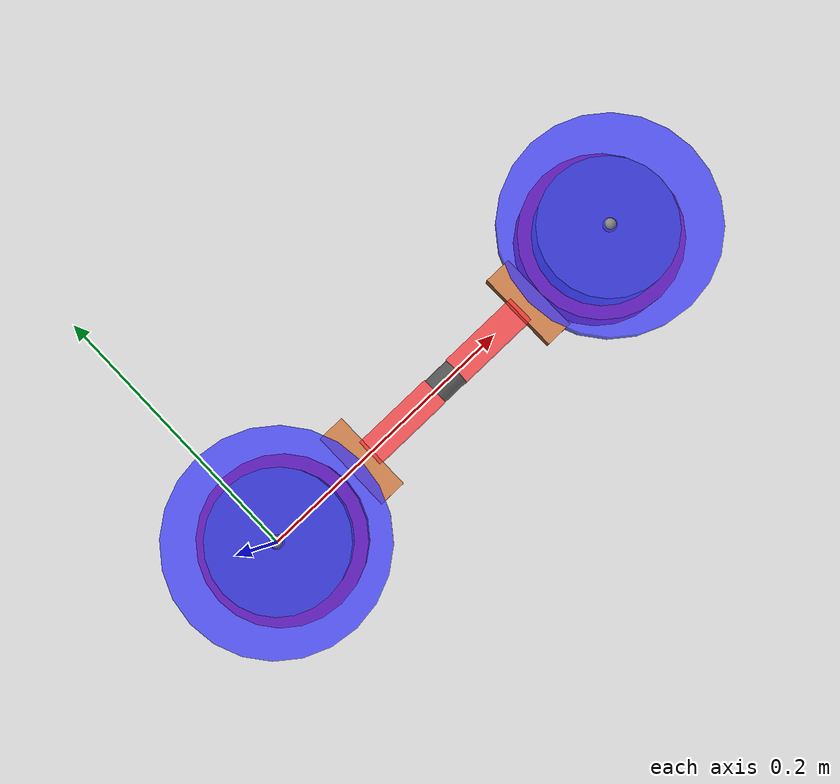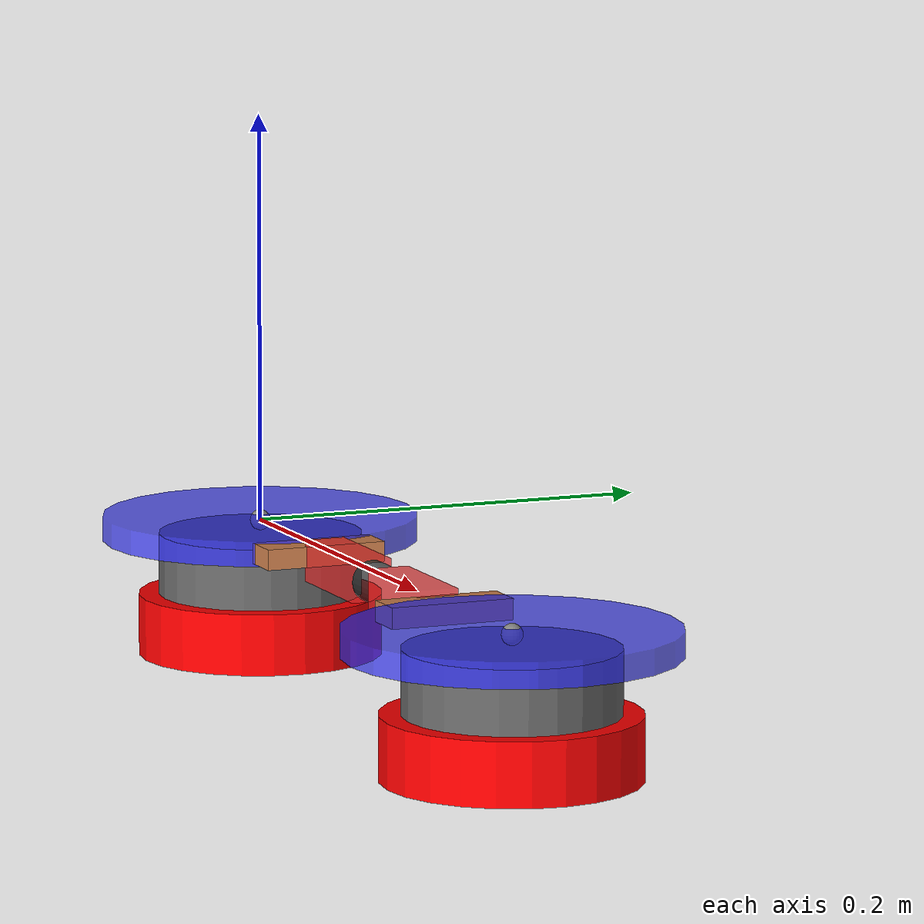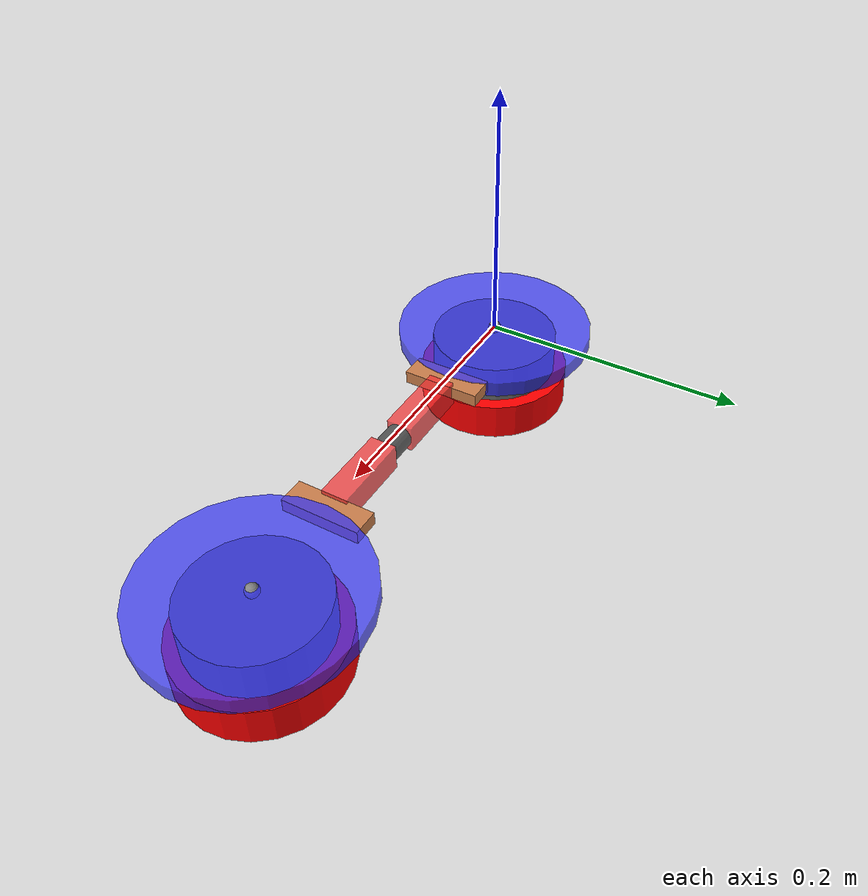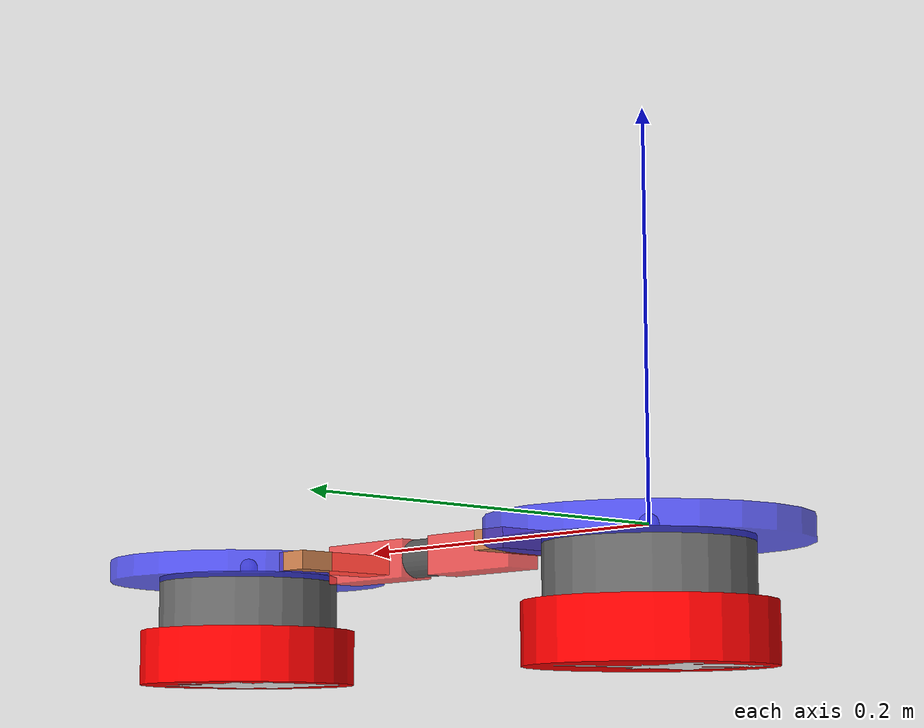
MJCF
<!-- The Lappa robot -->
<mujoco model="Lappa">
	<visual>
		<scale contactwidth="0.05" jointwidth="0.05" jointlength=".5" />
	</visual>
	<worldbody>
		<body name="a_root">
			<freejoint />
			<geom name="a_root" type="box" size=".001 .001 .001" rgba=".5 .5 .5 1" pos="0 0 -.025" mass=".001" />
			<body name="a_module">
				<site name="a_propeller" />
            <joint name="a_h2" type="hinge" axis="0 1 0" limited="true" range="-45 45" pos=".0775 0 0" />
				<body name="a_house" pos="0 0 -.003">
					<geom name="a_house" type="cylinder" size=".0775 .006" rgba=".2 .2 1 .75" />
					<joint name="a_h1" type="hinge" axis="0 0 1" limited="true" range="-180 180" />
					<body name="a_mount" pos=".0775 0 0">
						<geom name="a_mount" type="box" size=".01 .03 .005" rgba=".8 .5 .3 1" />
					</body>
				</body>
				<body name="a_chamber" pos="0 0 -.006">
					<geom name="a_gear" type="cylinder" fromto="0 0 0 0 0 -.03" size=".05" rgba=".4 .4 .4 1" />
					<geom name="a_chamber" type="cylinder" fromto="0 0 -.03 0 0 -.06" size=".06" rgba="1 0 0 1" />
					<body name="a_vacuum" pos="0 0 -.055">
						<geom name="a_vacuum" type="box" size=".04 .04 .005" rgba="1 1 1 1" margin=".01" gap=".01" mass=".001" />
					</body>
				</body>
			</body>
      <body name="arm" pos=".155 0 -.005">
        <geom name="arm" type="cylinder" size=".01 .01" euler="0 90 0" rgba=".2 .2 .2 .75" />
        <body name="a_arm" pos="-.01 0 0">
          <joint name="h3" type="hinge" axis="1 0 0" limited="true" range="-90 90" />
          <geom name="a_arm" type="box" fromto="0 0 0 -.06 0 0" size=" .01" rgba="1 .2 .2 .75" />
        </body>
        <body name="b_arm" pos=".01 0 0">
          <geom name="b_arm" type="box" fromto="0 0 0 .06 0 0" size=" .01" rgba="1 .2 .2 .75" />
        </body>
      </body>
      <body name="b_module" pos=".31 0 0" euler="0 0 180">
				<site name="b_propeller" />
        <joint name="b_h2" type="hinge" axis="0 1 0" limited="true" range="-45 45" pos=".0775 0 0" />
				<body name="b_house" pos="0 0 -.003">
					<geom name="b_house" type="cylinder" size=".0775 .006" rgba=".2 .2 1 .75" />
					<joint name="b_h1" type="hinge" axis="0 0 1" limited="true" range="-180 180" />
					<body name="b_mount" pos=".0775 0 0">
						<geom name="b_mount" type="box" size=".01 .03 .005" rgba=".8 .5 .3 1" />
					</body>
				</body>
				<body name="b_chamber" pos="0 0 -.006">
					<geom name="b_gear" type="cylinder" fromto="0 0 0 0 0 -.03" size=".05" rgba=".4 .4 .4 1" />
					<geom name="b_chamber" type="cylinder" fromto="0 0 -.03 0 0 -.06" size=".06" rgba="1 0 0 1" />
					<body name="b_vacuum" pos="0 0 -.055">
						<geom name="b_vacuum" type="box" size=".04 .04 .005" rgba="1 1 1 1" margin=".01" gap=".01" mass=".001" />
					</body>
				</body>
			</body>
		</body>
	</worldbody>
  <equality>
    <connect body1="a_mount" body2="a_arm" anchor="0 0 0" />
    <connect body1="b_mount" body2="b_arm" anchor="0 0 0" />
    <connect body1="a_arm" body2="b_arm" anchor="0 0 0" />
  </equality>
	<actuator>
		<motor name="a_h1" joint="a_h1" gear="1" />
		<adhesion name="a_adhesion" body="a_vacuum" ctrlrange="0 1" gain="50" />
		<motor name="a_thrust" site="a_propeller" ctrlrange="-1 1" ctrllimited="true" gear="0 0 15" />
    <motor name="h3" joint="h3" gear="1" />
    <motor name="b_h1" joint="b_h1" gear="1" />
		<adhesion name="b_adhesion" body="b_vacuum" ctrlrange="0 1" gain="50" />
		<motor name="b_thrust" site="b_propeller" ctrlrange="-1 1" ctrllimited="true" gear="0 0 15" />
	</actuator>

</mujoco>
